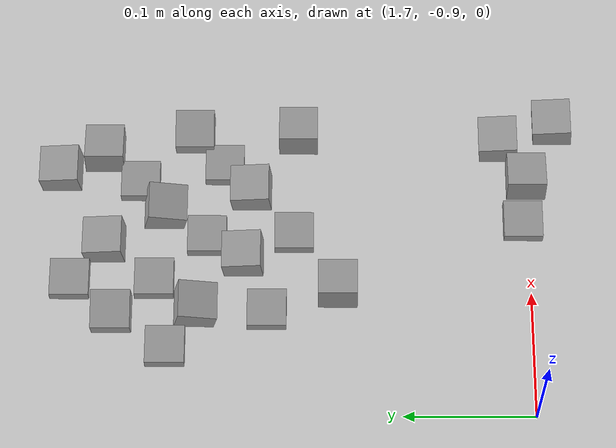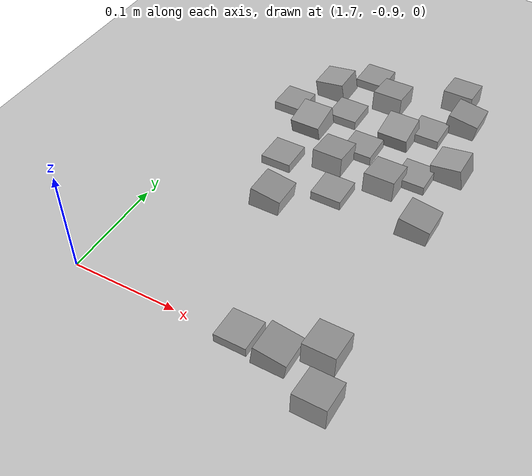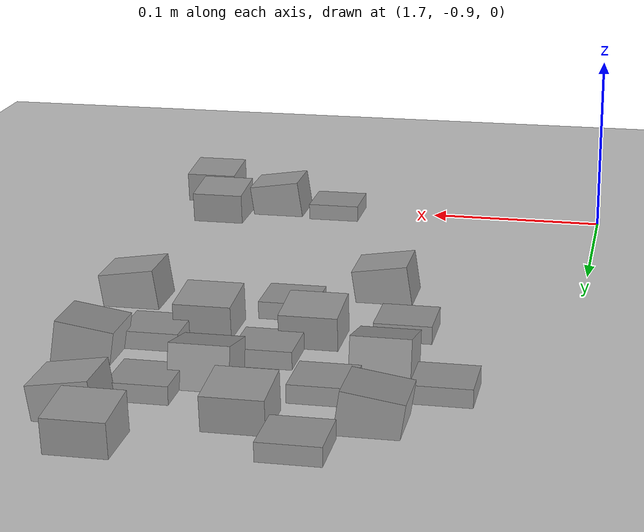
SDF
<sdf version="1.7">
 <world name="default">
  <model name="ground_plane">
   <static>1</static>
   <link name="link">
    <collision name="collision">
     <geometry><plane><normal>0 0 1</normal><size>100 100</size></plane></geometry>
     <surface><friction><ode><mu>100</mu><mu2>50</mu2></ode></friction></surface>
    </collision>
    <visual name="visual">
     <cast_shadows>0</cast_shadows>
     <geometry><plane><normal>0 0 1</normal><size>100 100</size></plane></geometry>
     <material>
      <script><uri>file://media/materials/scripts/gazebo.material</uri><name>Gazebo/Grey</name></script>
     </material>
    </visual>
   </link>
  </model>
  <model name="stone_road_2">
   <link name="link_0_clone_0">
    <inertial>
     <mass>1</mass>
     <inertia>
      <ixx>0.166667</ixx>
      <ixy>0</ixy>
      <ixz>0</ixz>
      <iyy>0.166667</iyy>
      <iyz>0</iyz>
      <izz>0.166667</izz>
     </inertia>
    </inertial>
    <pose>-0.104982 -0.15412 0.003778 0.2 -0 0</pose>
    <kinematic>1</kinematic>
    <visual name="visual">
     <geometry><box><size>0.03 0.03 0.03</size></box></geometry>
     <material>
      <lighting>1</lighting>
      <script><uri>file://media/materials/scripts/gazebo.material</uri><name>Gazebo/Grey</name></script>
      <shader type="pixel"><normal_map>__default__</normal_map></shader>
      <ambient>0.3 0.3 0.3 1</ambient>
      <diffuse>0.7 0.7 0.7 1</diffuse>
      <specular>0.01 0.01 0.01 1</specular>
      <emissive>0 0 0 1</emissive>
     </material>
    </visual>
    <collision name="collision">
     <geometry><box><size>0.03 0.03 0.03</size></box></geometry>
     <surface>
      <friction>
       <ode><mu>1</mu><mu2>1</mu2><fdir1>0 0 0</fdir1><slip1>0</slip1><slip2>0</slip2></ode>
       <torsional>
        <coefficient>1</coefficient>
        <patch_radius>0</patch_radius>
        <surface_radius>0</surface_radius>
        <use_patch_radius>1</use_patch_radius>
        <ode><slip>0</slip></ode>
       </torsional>
      </friction>
      <bounce><restitution_coefficient>0</restitution_coefficient><threshold>1e+06</threshold></bounce>
      <contact>
       <collide_without_contact>0</collide_without_contact>
       <collide_without_contact_bitmask>1</collide_without_contact_bitmask>
       <collide_bitmask>1</collide_bitmask>
       <ode>
        <soft_cfm>0</soft_cfm>
        <soft_erp>0.2</soft_erp>
        <kp>1e+13</kp>
        <kd>1</kd>
        <max_vel>0.01</max_vel>
        <min_depth>0</min_depth>
       </ode>
       <bullet>
        <split_impulse>1</split_impulse>
        <split_impulse_penetration_threshold>-0.01</split_impulse_penetration_threshold>
        <soft_cfm>0</soft_cfm>
        <soft_erp>0.2</soft_erp>
        <kp>1e+13</kp>
        <kd>1</kd>
       </bullet>
      </contact>
     </surface>
    </collision>
   </link>
   <link name="link_0_clone_1">
    <inertial>
     <mass>1</mass>
     <inertia>
      <ixx>0.166667</ixx>
      <ixy>0</ixy>
      <ixz>0</ixz>
      <iyy>0.166667</iyy>
      <iyz>0</iyz>
      <izz>0.166667</izz>
     </inertia>
    </inertial>
    <pose>-0.022921 -0.129606 0.003778 0.2 -0 0</pose>
    <kinematic>1</kinematic>
    <visual name="visual">
     <geometry><box><size>0.03 0.03 0.03</size></box></geometry>
     <material>
      <lighting>1</lighting>
      <script><uri>file://media/materials/scripts/gazebo.material</uri><name>Gazebo/Grey</name></script>
      <shader type="pixel"><normal_map>__default__</normal_map></shader>
      <ambient>0.3 0.3 0.3 1</ambient>
      <diffuse>0.7 0.7 0.7 1</diffuse>
      <specular>0.01 0.01 0.01 1</specular>
      <emissive>0 0 0 1</emissive>
     </material>
    </visual>
    <collision name="collision">
     <geometry><box><size>0.03 0.03 0.03</size></box></geometry>
     <surface>
      <friction>
       <ode><mu>1</mu><mu2>1</mu2><fdir1>0 0 0</fdir1><slip1>0</slip1><slip2>0</slip2></ode>
       <torsional>
        <coefficient>1</coefficient>
        <patch_radius>0</patch_radius>
        <surface_radius>0</surface_radius>
        <use_patch_radius>1</use_patch_radius>
        <ode><slip>0</slip></ode>
       </torsional>
      </friction>
      <bounce><restitution_coefficient>0</restitution_coefficient><threshold>1e+06</threshold></bounce>
      <contact>
       <collide_without_contact>0</collide_without_contact>
       <collide_without_contact_bitmask>1</collide_without_contact_bitmask>
       <collide_bitmask>1</collide_bitmask>
       <ode>
        <soft_cfm>0</soft_cfm>
        <soft_erp>0.2</soft_erp>
        <kp>1e+13</kp>
        <kd>1</kd>
        <max_vel>0.01</max_vel>
        <min_depth>0</min_depth>
       </ode>
       <bullet>
        <split_impulse>1</split_impulse>
        <split_impulse_penetration_threshold>-0.01</split_impulse_penetration_threshold>
        <soft_cfm>0</soft_cfm>
        <soft_erp>0.2</soft_erp>
        <kp>1e+13</kp>
        <kd>1</kd>
       </bullet>
      </contact>
     </surface>
    </collision>
   </link>
   <link name="link_0_clone_2_clone_0">
    <inertial>
     <mass>1</mass>
     <inertia>
      <ixx>0.166667</ixx>
      <ixy>0</ixy>
      <ixz>0</ixz>
      <iyy>0.166667</iyy>
      <iyz>0</iyz>
      <izz>0.166667</izz>
     </inertia>
    </inertial>
    <pose>0.026852 -0.0813 0.003778 0 0.15 0</pose>
    <kinematic>1</kinematic>
    <visual name="visual">
     <geometry><box><size>0.03 0.03 0.03</size></box></geometry>
     <material>
      <lighting>1</lighting>
      <script><uri>file://media/materials/scripts/gazebo.material</uri><name>Gazebo/Grey</name></script>
      <shader type="pixel"><normal_map>__default__</normal_map></shader>
      <ambient>0.3 0.3 0.3 1</ambient>
      <diffuse>0.7 0.7 0.7 1</diffuse>
      <specular>0.01 0.01 0.01 1</specular>
      <emissive>0 0 0 1</emissive>
     </material>
    </visual>
    <collision name="collision">
     <geometry><box><size>0.03 0.03 0.03</size></box></geometry>
     <surface>
      <friction>
       <ode><mu>1</mu><mu2>1</mu2><fdir1>0 0 0</fdir1><slip1>0</slip1><slip2>0</slip2></ode>
       <torsional>
        <coefficient>1</coefficient>
        <patch_radius>0</patch_radius>
        <surface_radius>0</surface_radius>
        <use_patch_radius>1</use_patch_radius>
        <ode><slip>0</slip></ode>
       </torsional>
      </friction>
      <bounce><restitution_coefficient>0</restitution_coefficient><threshold>1e+06</threshold></bounce>
      <contact>
       <collide_without_contact>0</collide_without_contact>
       <collide_without_contact_bitmask>1</collide_without_contact_bitmask>
       <collide_bitmask>1</collide_bitmask>
       <ode>
        <soft_cfm>0</soft_cfm>
        <soft_erp>0.2</soft_erp>
        <kp>1e+13</kp>
        <kd>1</kd>
        <max_vel>0.01</max_vel>
        <min_depth>0</min_depth>
       </ode>
       <bullet>
        <split_impulse>1</split_impulse>
        <split_impulse_penetration_threshold>-0.01</split_impulse_penetration_threshold>
        <soft_cfm>0</soft_cfm>
        <soft_erp>0.2</soft_erp>
        <kp>1e+13</kp>
        <kd>1</kd>
       </bullet>
      </contact>
     </surface>
    </collision>
   </link>
   <link name="link_0_clone_2_clone_2_clone_13_clone_clone_10">
    <inertial>
     <mass>1</mass>
     <inertia>
      <ixx>0.166667</ixx>
      <ixy>0</ixy>
      <ixz>0</ixz>
      <iyy>0.166667</iyy>
      <iyz>0</iyz>
      <izz>0.166667</izz>
     </inertia>
    </inertial>
    <pose>-0.006825 -0.196489 0.003778 -0.1 0 0</pose>
    <kinematic>1</kinematic>
    <visual name="visual">
     <geometry><box><size>0.03 0.03 0.03</size></box></geometry>
     <material>
      <lighting>1</lighting>
      <script><uri>file://media/materials/scripts/gazebo.material</uri><name>Gazebo/Grey</name></script>
      <shader type="pixel"><normal_map>__default__</normal_map></shader>
      <ambient>0.3 0.3 0.3 1</ambient>
      <diffuse>0.7 0.7 0.7 1</diffuse>
      <specular>0.01 0.01 0.01 1</specular>
      <emissive>0 0 0 1</emissive>
     </material>
    </visual>
    <collision name="collision">
     <geometry><box><size>0.03 0.03 0.03</size></box></geometry>
     <surface>
      <friction>
       <ode><mu>1</mu><mu2>1</mu2><fdir1>0 0 0</fdir1><slip1>0</slip1><slip2>0</slip2></ode>
       <torsional>
        <coefficient>1</coefficient>
        <patch_radius>0</patch_radius>
        <surface_radius>0</surface_radius>
        <use_patch_radius>1</use_patch_radius>
        <ode><slip>0</slip></ode>
       </torsional>
      </friction>
      <bounce><restitution_coefficient>0</restitution_coefficient><threshold>1e+06</threshold></bounce>
      <contact>
       <collide_without_contact>0</collide_without_contact>
       <collide_without_contact_bitmask>1</collide_without_contact_bitmask>
       <collide_bitmask>1</collide_bitmask>
       <ode>
        <soft_cfm>0</soft_cfm>
        <soft_erp>0.2</soft_erp>
        <kp>1e+13</kp>
        <kd>1</kd>
        <max_vel>0.01</max_vel>
        <min_depth>0</min_depth>
       </ode>
       <bullet>
        <split_impulse>1</split_impulse>
        <split_impulse_penetration_threshold>-0.01</split_impulse_penetration_threshold>
        <soft_cfm>0</soft_cfm>
        <soft_erp>0.2</soft_erp>
        <kp>1e+13</kp>
        <kd>1</kd>
       </bullet>
      </contact>
     </surface>
    </collision>
   </link>
   <link name="link_0_clone_2_clone_2_clone_13_clone_clone_16_clone_10">
    <inertial>
     <mass>1</mass>
     <inertia>
      <ixx>0.166667</ixx>
      <ixy>0</ixy>
      <ixz>0</ixz>
      <iyy>0.166667</iyy>
      <iyz>0</iyz>
      <izz>0.166667</izz>
     </inertia>
    </inertial>
    <pose>-0.082186 -0.05781 -0.006222 0 -0 0</pose>
    <kinematic>1</kinematic>
    <visual name="visual">
     <geometry><box><size>0.03 0.03 0.03</size></box></geometry>
     <material>
      <lighting>1</lighting>
      <script><uri>file://media/materials/scripts/gazebo.material</uri><name>Gazebo/Grey</name></script>
      <shader type="pixel"><normal_map>__default__</normal_map></shader>
      <ambient>0.3 0.3 0.3 1</ambient>
      <diffuse>0.7 0.7 0.7 1</diffuse>
      <specular>0.01 0.01 0.01 1</specular>
      <emissive>0 0 0 1</emissive>
     </material>
    </visual>
    <collision name="collision">
     <geometry><box><size>0.03 0.03 0.03</size></box></geometry>
     <surface>
      <friction>
       <ode><mu>1</mu><mu2>1</mu2><fdir1>0 0 0</fdir1><slip1>0</slip1><slip2>0</slip2></ode>
       <torsional>
        <coefficient>1</coefficient>
        <patch_radius>0</patch_radius>
        <surface_radius>0</surface_radius>
        <use_patch_radius>1</use_patch_radius>
        <ode><slip>0</slip></ode>
       </torsional>
      </friction>
      <bounce><restitution_coefficient>0</restitution_coefficient><threshold>1e+06</threshold></bounce>
      <contact>
       <collide_without_contact>0</collide_without_contact>
       <collide_without_contact_bitmask>1</collide_without_contact_bitmask>
       <collide_bitmask>1</collide_bitmask>
       <ode>
        <soft_cfm>0</soft_cfm>
        <soft_erp>0.2</soft_erp>
        <kp>1e+13</kp>
        <kd>1</kd>
        <max_vel>0.01</max_vel>
        <min_depth>0</min_depth>
       </ode>
       <bullet>
        <split_impulse>1</split_impulse>
        <split_impulse_penetration_threshold>-0.01</split_impulse_penetration_threshold>
        <soft_cfm>0</soft_cfm>
        <soft_erp>0.2</soft_erp>
        <kp>1e+13</kp>
        <kd>1</kd>
       </bullet>
      </contact>
     </surface>
    </collision>
   </link>
   <link name="link_0_clone_2_clone_2_clone_13_clone_clone_16_clone_17">
    <inertial>
     <mass>1</mass>
     <inertia>
      <ixx>0.166667</ixx>
      <ixy>0</ixy>
      <ixz>0</ixz>
      <iyy>0.166667</iyy>
      <iyz>0</iyz>
      <izz>0.166667</izz>
     </inertia>
    </inertial>
    <pose>0.014877 -0.175392 -0.006222 0 -0 0</pose>
    <kinematic>1</kinematic>
    <visual name="visual">
     <geometry><box><size>0.03 0.03 0.03</size></box></geometry>
     <material>
      <lighting>1</lighting>
      <script><uri>file://media/materials/scripts/gazebo.material</uri><name>Gazebo/Grey</name></script>
      <shader type="pixel"><normal_map>__default__</normal_map></shader>
      <ambient>0.3 0.3 0.3 1</ambient>
      <diffuse>0.7 0.7 0.7 1</diffuse>
      <specular>0.01 0.01 0.01 1</specular>
      <emissive>0 0 0 1</emissive>
     </material>
    </visual>
    <collision name="collision">
     <geometry><box><size>0.03 0.03 0.03</size></box></geometry>
     <surface>
      <friction>
       <ode><mu>1</mu><mu2>1</mu2><fdir1>0 0 0</fdir1><slip1>0</slip1><slip2>0</slip2></ode>
       <torsional>
        <coefficient>1</coefficient>
        <patch_radius>0</patch_radius>
        <surface_radius>0</surface_radius>
        <use_patch_radius>1</use_patch_radius>
        <ode><slip>0</slip></ode>
       </torsional>
      </friction>
      <bounce><restitution_coefficient>0</restitution_coefficient><threshold>1e+06</threshold></bounce>
      <contact>
       <collide_without_contact>0</collide_without_contact>
       <collide_without_contact_bitmask>1</collide_without_contact_bitmask>
       <collide_bitmask>1</collide_bitmask>
       <ode>
        <soft_cfm>0</soft_cfm>
        <soft_erp>0.2</soft_erp>
        <kp>1e+13</kp>
        <kd>1</kd>
        <max_vel>0.01</max_vel>
        <min_depth>0</min_depth>
       </ode>
       <bullet>
        <split_impulse>1</split_impulse>
        <split_impulse_penetration_threshold>-0.01</split_impulse_penetration_threshold>
        <soft_cfm>0</soft_cfm>
        <soft_erp>0.2</soft_erp>
        <kp>1e+13</kp>
        <kd>1</kd>
       </bullet>
      </contact>
     </surface>
    </collision>
   </link>
   <link name="link_0_clone_2_clone_2_clone_13_clone_clone_16_clone_27">
    <inertial>
     <mass>1</mass>
     <inertia>
      <ixx>0.166667</ixx>
      <ixy>0</ixy>
      <ixz>0</ixz>
      <iyy>0.166667</iyy>
      <iyz>0</iyz>
      <izz>0.166667</izz>
     </inertia>
    </inertial>
    <pose>-0.137316 -0.132225 -0.006222 0 -0 0</pose>
    <kinematic>1</kinematic>
    <visual name="visual">
     <geometry><box><size>0.03 0.03 0.03</size></box></geometry>
     <material>
      <lighting>1</lighting>
      <script><uri>file://media/materials/scripts/gazebo.material</uri><name>Gazebo/Grey</name></script>
      <shader type="pixel"><normal_map>__default__</normal_map></shader>
      <ambient>0.3 0.3 0.3 1</ambient>
      <diffuse>0.7 0.7 0.7 1</diffuse>
      <specular>0.01 0.01 0.01 1</specular>
      <emissive>0 0 0 1</emissive>
     </material>
    </visual>
    <collision name="collision">
     <geometry><box><size>0.03 0.03 0.03</size></box></geometry>
     <surface>
      <friction>
       <ode><mu>1</mu><mu2>1</mu2><fdir1>0 0 0</fdir1><slip1>0</slip1><slip2>0</slip2></ode>
       <torsional>
        <coefficient>1</coefficient>
        <patch_radius>0</patch_radius>
        <surface_radius>0</surface_radius>
        <use_patch_radius>1</use_patch_radius>
        <ode><slip>0</slip></ode>
       </torsional>
      </friction>
      <bounce><restitution_coefficient>0</restitution_coefficient><threshold>1e+06</threshold></bounce>
      <contact>
       <collide_without_contact>0</collide_without_contact>
       <collide_without_contact_bitmask>1</collide_without_contact_bitmask>
       <collide_bitmask>1</collide_bitmask>
       <ode>
        <soft_cfm>0</soft_cfm>
        <soft_erp>0.2</soft_erp>
        <kp>1e+13</kp>
        <kd>1</kd>
        <max_vel>0.01</max_vel>
        <min_depth>0</min_depth>
       </ode>
       <bullet>
        <split_impulse>1</split_impulse>
        <split_impulse_penetration_threshold>-0.01</split_impulse_penetration_threshold>
        <soft_cfm>0</soft_cfm>
        <soft_erp>0.2</soft_erp>
        <kp>1e+13</kp>
        <kd>1</kd>
       </bullet>
      </contact>
     </surface>
    </collision>
   </link>
   <link name="link_0_clone_2_clone_2_clone_13_clone_clone_16_clone_28">
    <inertial>
     <mass>1</mass>
     <inertia>
      <ixx>0.166667</ixx>
      <ixy>0</ixy>
      <ixz>0</ixz>
      <iyy>0.166667</iyy>
      <iyz>0</iyz>
      <izz>0.166667</izz>
     </inertia>
    </inertial>
    <pose>-0.10708 -0.209042 -0.006222 0 -0 0</pose>
    <kinematic>1</kinematic>
    <visual name="visual">
     <geometry><box><size>0.03 0.03 0.03</size></box></geometry>
     <material>
      <lighting>1</lighting>
      <script><uri>file://media/materials/scripts/gazebo.material</uri><name>Gazebo/Grey</name></script>
      <shader type="pixel"><normal_map>__default__</normal_map></shader>
      <ambient>0.3 0.3 0.3 1</ambient>
      <diffuse>0.7 0.7 0.7 1</diffuse>
      <specular>0.01 0.01 0.01 1</specular>
      <emissive>0 0 0 1</emissive>
     </material>
    </visual>
    <collision name="collision">
     <geometry><box><size>0.03 0.03 0.03</size></box></geometry>
     <surface>
      <friction>
       <ode><mu>1</mu><mu2>1</mu2><fdir1>0 0 0</fdir1><slip1>0</slip1><slip2>0</slip2></ode>
       <torsional>
        <coefficient>1</coefficient>
        <patch_radius>0</patch_radius>
        <surface_radius>0</surface_radius>
        <use_patch_radius>1</use_patch_radius>
        <ode><slip>0</slip></ode>
       </torsional>
      </friction>
      <bounce><restitution_coefficient>0</restitution_coefficient><threshold>1e+06</threshold></bounce>
      <contact>
       <collide_without_contact>0</collide_without_contact>
       <collide_without_contact_bitmask>1</collide_without_contact_bitmask>
       <collide_bitmask>1</collide_bitmask>
       <ode>
        <soft_cfm>0</soft_cfm>
        <soft_erp>0.2</soft_erp>
        <kp>1e+13</kp>
        <kd>1</kd>
        <max_vel>0.01</max_vel>
        <min_depth>0</min_depth>
       </ode>
       <bullet>
        <split_impulse>1</split_impulse>
        <split_impulse_penetration_threshold>-0.01</split_impulse_penetration_threshold>
        <soft_cfm>0</soft_cfm>
        <soft_erp>0.2</soft_erp>
        <kp>1e+13</kp>
        <kd>1</kd>
       </bullet>
      </contact>
     </surface>
    </collision>
   </link>
   <link name="link_0_clone_2_clone_2_clone_13_clone_clone_16_clone_29">
    <inertial>
     <mass>1</mass>
     <inertia>
      <ixx>0.166667</ixx>
      <ixy>0</ixy>
      <ixz>0</ixz>
      <iyy>0.166667</iyy>
      <iyz>0</iyz>
      <izz>0.166667</izz>
     </inertia>
    </inertial>
    <pose>-0.042964 -0.229632 -0.006222 0 -0 0</pose>
    <kinematic>1</kinematic>
    <visual name="visual">
     <geometry><box><size>0.03 0.03 0.03</size></box></geometry>
     <material>
      <lighting>1</lighting>
      <script><uri>file://media/materials/scripts/gazebo.material</uri><name>Gazebo/Grey</name></script>
      <shader type="pixel"><normal_map>__default__</normal_map></shader>
      <ambient>0.3 0.3 0.3 1</ambient>
      <diffuse>0.7 0.7 0.7 1</diffuse>
      <specular>0.01 0.01 0.01 1</specular>
      <emissive>0 0 0 1</emissive>
     </material>
    </visual>
    <collision name="collision">
     <geometry><box><size>0.03 0.03 0.03</size></box></geometry>
     <surface>
      <friction>
       <ode><mu>1</mu><mu2>1</mu2><fdir1>0 0 0</fdir1><slip1>0</slip1><slip2>0</slip2></ode>
       <torsional>
        <coefficient>1</coefficient>
        <patch_radius>0</patch_radius>
        <surface_radius>0</surface_radius>
        <use_patch_radius>1</use_patch_radius>
        <ode><slip>0</slip></ode>
       </torsional>
      </friction>
      <bounce><restitution_coefficient>0</restitution_coefficient><threshold>1e+06</threshold></bounce>
      <contact>
       <collide_without_contact>0</collide_without_contact>
       <collide_without_contact_bitmask>1</collide_without_contact_bitmask>
       <collide_bitmask>1</collide_bitmask>
       <ode>
        <soft_cfm>0</soft_cfm>
        <soft_erp>0.2</soft_erp>
        <kp>1e+13</kp>
        <kd>1</kd>
        <max_vel>0.01</max_vel>
        <min_depth>0</min_depth>
       </ode>
       <bullet>
        <split_impulse>1</split_impulse>
        <split_impulse_penetration_threshold>-0.01</split_impulse_penetration_threshold>
        <soft_cfm>0</soft_cfm>
        <soft_erp>0.2</soft_erp>
        <kp>1e+13</kp>
        <kd>1</kd>
       </bullet>
      </contact>
     </surface>
    </collision>
   </link>
   <link name="link_0_clone_2_clone_2_clone_13_clone_clone_16_clone_7">
    <inertial>
     <mass>1</mass>
     <inertia>
      <ixx>0.166667</ixx>
      <ixy>0</ixy>
      <ixz>0</ixz>
      <iyy>0.166667</iyy>
      <iyz>0</iyz>
      <izz>0.166667</izz>
     </inertia>
    </inertial>
    <pose>0.000883 -0.109959 -0.006222 0 -0 0</pose>
    <kinematic>1</kinematic>
    <visual name="visual">
     <geometry><box><size>0.03 0.03 0.03</size></box></geometry>
     <material>
      <lighting>1</lighting>
      <script><uri>file://media/materials/scripts/gazebo.material</uri><name>Gazebo/Grey</name></script>
      <shader type="pixel"><normal_map>__default__</normal_map></shader>
      <ambient>0.3 0.3 0.3 1</ambient>
      <diffuse>0.7 0.7 0.7 1</diffuse>
      <specular>0.01 0.01 0.01 1</specular>
      <emissive>0 0 0 1</emissive>
     </material>
    </visual>
    <collision name="collision">
     <geometry><box><size>0.03 0.03 0.03</size></box></geometry>
     <surface>
      <friction>
       <ode><mu>1</mu><mu2>1</mu2><fdir1>0 0 0</fdir1><slip1>0</slip1><slip2>0</slip2></ode>
       <torsional>
        <coefficient>1</coefficient>
        <patch_radius>0</patch_radius>
        <surface_radius>0</surface_radius>
        <use_patch_radius>1</use_patch_radius>
        <ode><slip>0</slip></ode>
       </torsional>
      </friction>
      <bounce><restitution_coefficient>0</restitution_coefficient><threshold>1e+06</threshold></bounce>
      <contact>
       <collide_without_contact>0</collide_without_contact>
       <collide_without_contact_bitmask>1</collide_without_contact_bitmask>
       <collide_bitmask>1</collide_bitmask>
       <ode>
        <soft_cfm>0</soft_cfm>
        <soft_erp>0.2</soft_erp>
        <kp>1e+13</kp>
        <kd>1</kd>
        <max_vel>0.01</max_vel>
        <min_depth>0</min_depth>
       </ode>
       <bullet>
        <split_impulse>1</split_impulse>
        <split_impulse_penetration_threshold>-0.01</split_impulse_penetration_threshold>
        <soft_cfm>0</soft_cfm>
        <soft_erp>0.2</soft_erp>
        <kp>1e+13</kp>
        <kd>1</kd>
       </bullet>
      </contact>
     </surface>
    </collision>
   </link>
   <link name="link_0_clone_2_clone_2_clone_13_clone_clone_16_clone_8">
    <inertial>
     <mass>1</mass>
     <inertia>
      <ixx>0.166667</ixx>
      <ixy>0</ixy>
      <ixz>0</ixz>
      <iyy>0.166667</iyy>
      <iyz>0</iyz>
      <izz>0.166667</izz>
     </inertia>
    </inertial>
    <pose>-0.045715 -0.162471 -0.006222 0 -0 0</pose>
    <kinematic>1</kinematic>
    <visual name="visual">
     <geometry><box><size>0.03 0.03 0.03</size></box></geometry>
     <material>
      <lighting>1</lighting>
      <script><uri>file://media/materials/scripts/gazebo.material</uri><name>Gazebo/Grey</name></script>
      <shader type="pixel"><normal_map>__default__</normal_map></shader>
      <ambient>0.3 0.3 0.3 1</ambient>
      <diffuse>0.7 0.7 0.7 1</diffuse>
      <specular>0.01 0.01 0.01 1</specular>
      <emissive>0 0 0 1</emissive>
     </material>
    </visual>
    <collision name="collision">
     <geometry><box><size>0.03 0.03 0.03</size></box></geometry>
     <surface>
      <friction>
       <ode><mu>1</mu><mu2>1</mu2><fdir1>0 0 0</fdir1><slip1>0</slip1><slip2>0</slip2></ode>
       <torsional>
        <coefficient>1</coefficient>
        <patch_radius>0</patch_radius>
        <surface_radius>0</surface_radius>
        <use_patch_radius>1</use_patch_radius>
        <ode><slip>0</slip></ode>
       </torsional>
      </friction>
      <bounce><restitution_coefficient>0</restitution_coefficient><threshold>1e+06</threshold></bounce>
      <contact>
       <collide_without_contact>0</collide_without_contact>
       <collide_without_contact_bitmask>1</collide_without_contact_bitmask>
       <collide_bitmask>1</collide_bitmask>
       <ode>
        <soft_cfm>0</soft_cfm>
        <soft_erp>0.2</soft_erp>
        <kp>1e+13</kp>
        <kd>1</kd>
        <max_vel>0.01</max_vel>
        <min_depth>0</min_depth>
       </ode>
       <bullet>
        <split_impulse>1</split_impulse>
        <split_impulse_penetration_threshold>-0.01</split_impulse_penetration_threshold>
        <soft_cfm>0</soft_cfm>
        <soft_erp>0.2</soft_erp>
        <kp>1e+13</kp>
        <kd>1</kd>
       </bullet>
      </contact>
     </surface>
    </collision>
   </link>
   <link name="link_0_clone_2_clone_2_clone_13_clone_clone_16_clone_9">
    <inertial>
     <mass>1</mass>
     <inertia>
      <ixx>0.166667</ixx>
      <ixy>0</ixy>
      <ixz>0</ixz>
      <iyy>0.166667</iyy>
      <iyz>0</iyz>
      <izz>0.166667</izz>
     </inertia>
    </inertial>
    <pose>-0.081689 -0.122641 -0.006222 0 -0 0</pose>
    <kinematic>1</kinematic>
    <visual name="visual">
     <geometry><box><size>0.03 0.03 0.03</size></box></geometry>
     <material>
      <lighting>1</lighting>
      <script><uri>file://media/materials/scripts/gazebo.material</uri><name>Gazebo/Grey</name></script>
      <shader type="pixel"><normal_map>__default__</normal_map></shader>
      <ambient>0.3 0.3 0.3 1</ambient>
      <diffuse>0.7 0.7 0.7 1</diffuse>
      <specular>0.01 0.01 0.01 1</specular>
      <emissive>0 0 0 1</emissive>
     </material>
    </visual>
    <collision name="collision">
     <geometry><box><size>0.03 0.03 0.03</size></box></geometry>
     <surface>
      <friction>
       <ode><mu>1</mu><mu2>1</mu2><fdir1>0 0 0</fdir1><slip1>0</slip1><slip2>0</slip2></ode>
       <torsional>
        <coefficient>1</coefficient>
        <patch_radius>0</patch_radius>
        <surface_radius>0</surface_radius>
        <use_patch_radius>1</use_patch_radius>
        <ode><slip>0</slip></ode>
       </torsional>
      </friction>
      <bounce><restitution_coefficient>0</restitution_coefficient><threshold>1e+06</threshold></bounce>
      <contact>
       <collide_without_contact>0</collide_without_contact>
       <collide_without_contact_bitmask>1</collide_without_contact_bitmask>
       <collide_bitmask>1</collide_bitmask>
       <ode>
        <soft_cfm>0</soft_cfm>
        <soft_erp>0.2</soft_erp>
        <kp>1e+13</kp>
        <kd>1</kd>
        <max_vel>0.01</max_vel>
        <min_depth>0</min_depth>
       </ode>
       <bullet>
        <split_impulse>1</split_impulse>
        <split_impulse_penetration_threshold>-0.01</split_impulse_penetration_threshold>
        <soft_cfm>0</soft_cfm>
        <soft_erp>0.2</soft_erp>
        <kp>1e+13</kp>
        <kd>1</kd>
       </bullet>
      </contact>
     </surface>
    </collision>
   </link>
   <link name="link_0_clone_2_clone_2_clone_13_clone_clone_6">
    <inertial>
     <mass>1</mass>
     <inertia>
      <ixx>0.166667</ixx>
      <ixy>0</ixy>
      <ixz>0</ixz>
      <iyy>0.166667</iyy>
      <iyz>0</iyz>
      <izz>0.166667</izz>
     </inertia>
    </inertial>
    <pose>0.009445 -0.048118 0.003778 -0.1 0 0</pose>
    <kinematic>1</kinematic>
    <visual name="visual">
     <geometry><box><size>0.03 0.03 0.03</size></box></geometry>
     <material>
      <lighting>1</lighting>
      <script><uri>file://media/materials/scripts/gazebo.material</uri><name>Gazebo/Grey</name></script>
      <shader type="pixel"><normal_map>__default__</normal_map></shader>
      <ambient>0.3 0.3 0.3 1</ambient>
      <diffuse>0.7 0.7 0.7 1</diffuse>
      <specular>0.01 0.01 0.01 1</specular>
      <emissive>0 0 0 1</emissive>
     </material>
    </visual>
    <collision name="collision">
     <geometry><box><size>0.03 0.03 0.03</size></box></geometry>
     <surface>
      <friction>
       <ode><mu>1</mu><mu2>1</mu2><fdir1>0 0 0</fdir1><slip1>0</slip1><slip2>0</slip2></ode>
       <torsional>
        <coefficient>1</coefficient>
        <patch_radius>0</patch_radius>
        <surface_radius>0</surface_radius>
        <use_patch_radius>1</use_patch_radius>
        <ode><slip>0</slip></ode>
       </torsional>
      </friction>
      <bounce><restitution_coefficient>0</restitution_coefficient><threshold>1e+06</threshold></bounce>
      <contact>
       <collide_without_contact>0</collide_without_contact>
       <collide_without_contact_bitmask>1</collide_without_contact_bitmask>
       <collide_bitmask>1</collide_bitmask>
       <ode>
        <soft_cfm>0</soft_cfm>
        <soft_erp>0.2</soft_erp>
        <kp>1e+13</kp>
        <kd>1</kd>
        <max_vel>0.01</max_vel>
        <min_depth>0</min_depth>
       </ode>
       <bullet>
        <split_impulse>1</split_impulse>
        <split_impulse_penetration_threshold>-0.01</split_impulse_penetration_threshold>
        <soft_cfm>0</soft_cfm>
        <soft_erp>0.2</soft_erp>
        <kp>1e+13</kp>
        <kd>1</kd>
       </bullet>
      </contact>
     </surface>
    </collision>
   </link>
   <link name="link_0_clone_2_clone_2_clone_13_clone_clone_8">
    <inertial>
     <mass>1</mass>
     <inertia>
      <ixx>0.166667</ixx>
      <ixy>0</ixy>
      <ixz>0</ixz>
      <iyy>0.166667</iyy>
      <iyz>0</iyz>
      <izz>0.166667</izz>
     </inertia>
    </inertial>
    <pose>-0.051207 -0.083778 0.003778 -0.1 0 0</pose>
    <kinematic>1</kinematic>
    <visual name="visual">
     <geometry><box><size>0.03 0.03 0.03</size></box></geometry>
     <material>
      <lighting>1</lighting>
      <script><uri>file://media/materials/scripts/gazebo.material</uri><name>Gazebo/Grey</name></script>
      <shader type="pixel"><normal_map>__default__</normal_map></shader>
      <ambient>0.3 0.3 0.3 1</ambient>
      <diffuse>0.7 0.7 0.7 1</diffuse>
      <specular>0.01 0.01 0.01 1</specular>
      <emissive>0 0 0 1</emissive>
     </material>
    </visual>
    <collision name="collision">
     <geometry><box><size>0.03 0.03 0.03</size></box></geometry>
     <surface>
      <friction>
       <ode><mu>1</mu><mu2>1</mu2><fdir1>0 0 0</fdir1><slip1>0</slip1><slip2>0</slip2></ode>
       <torsional>
        <coefficient>1</coefficient>
        <patch_radius>0</patch_radius>
        <surface_radius>0</surface_radius>
        <use_patch_radius>1</use_patch_radius>
        <ode><slip>0</slip></ode>
       </torsional>
      </friction>
      <bounce><restitution_coefficient>0</restitution_coefficient><threshold>1e+06</threshold></bounce>
      <contact>
       <collide_without_contact>0</collide_without_contact>
       <collide_without_contact_bitmask>1</collide_without_contact_bitmask>
       <collide_bitmask>1</collide_bitmask>
       <ode>
        <soft_cfm>0</soft_cfm>
        <soft_erp>0.2</soft_erp>
        <kp>1e+13</kp>
        <kd>1</kd>
        <max_vel>0.01</max_vel>
        <min_depth>0</min_depth>
       </ode>
       <bullet>
        <split_impulse>1</split_impulse>
        <split_impulse_penetration_threshold>-0.01</split_impulse_penetration_threshold>
        <soft_cfm>0</soft_cfm>
        <soft_erp>0.2</soft_erp>
        <kp>1e+13</kp>
        <kd>1</kd>
       </bullet>
      </contact>
     </surface>
    </collision>
   </link>
   <link name="link_0_clone_2_clone_2_clone_13_clone_clone_9">
    <inertial>
     <mass>1</mass>
     <inertia>
      <ixx>0.166667</ixx>
      <ixy>0</ixy>
      <ixz>0</ixz>
      <iyy>0.166667</iyy>
      <iyz>0</iyz>
      <izz>0.166667</izz>
     </inertia>
    </inertial>
    <pose>-0.062692 -0.190617 0.003778 -0.1 0 0</pose>
    <kinematic>1</kinematic>
    <visual name="visual">
     <geometry><box><size>0.03 0.03 0.03</size></box></geometry>
     <material>
      <lighting>1</lighting>
      <script><uri>file://media/materials/scripts/gazebo.material</uri><name>Gazebo/Grey</name></script>
      <shader type="pixel"><normal_map>__default__</normal_map></shader>
      <ambient>0.3 0.3 0.3 1</ambient>
      <diffuse>0.7 0.7 0.7 1</diffuse>
      <specular>0.01 0.01 0.01 1</specular>
      <emissive>0 0 0 1</emissive>
     </material>
    </visual>
    <collision name="collision">
     <geometry><box><size>0.03 0.03 0.03</size></box></geometry>
     <surface>
      <friction>
       <ode><mu>1</mu><mu2>1</mu2><fdir1>0 0 0</fdir1><slip1>0</slip1><slip2>0</slip2></ode>
       <torsional>
        <coefficient>1</coefficient>
        <patch_radius>0</patch_radius>
        <surface_radius>0</surface_radius>
        <use_patch_radius>1</use_patch_radius>
        <ode><slip>0</slip></ode>
       </torsional>
      </friction>
      <bounce><restitution_coefficient>0</restitution_coefficient><threshold>1e+06</threshold></bounce>
      <contact>
       <collide_without_contact>0</collide_without_contact>
       <collide_without_contact_bitmask>1</collide_without_contact_bitmask>
       <collide_bitmask>1</collide_bitmask>
       <ode>
        <soft_cfm>0</soft_cfm>
        <soft_erp>0.2</soft_erp>
        <kp>1e+13</kp>
        <kd>1</kd>
        <max_vel>0.01</max_vel>
        <min_depth>0</min_depth>
       </ode>
       <bullet>
        <split_impulse>1</split_impulse>
        <split_impulse_penetration_threshold>-0.01</split_impulse_penetration_threshold>
        <soft_cfm>0</soft_cfm>
        <soft_erp>0.2</soft_erp>
        <kp>1e+13</kp>
        <kd>1</kd>
       </bullet>
      </contact>
     </surface>
    </collision>
   </link>
   <link name="link_0_clone_2_clone_2_clone_3">
    <inertial>
     <mass>1</mass>
     <inertia>
      <ixx>0.166667</ixx>
      <ixy>0</ixy>
      <ixz>0</ixz>
      <iyy>0.166667</iyy>
      <iyz>0</iyz>
      <izz>0.166667</izz>
     </inertia>
    </inertial>
    <pose>-0.110514 -0.090915 0.003778 0 -0.15 0</pose>
    <kinematic>1</kinematic>
    <visual name="visual">
     <geometry><box><size>0.03 0.03 0.03</size></box></geometry>
     <material>
      <lighting>1</lighting>
      <script><uri>file://media/materials/scripts/gazebo.material</uri><name>Gazebo/Grey</name></script>
      <shader type="pixel"><normal_map>__default__</normal_map></shader>
      <ambient>0.3 0.3 0.3 1</ambient>
      <diffuse>0.7 0.7 0.7 1</diffuse>
      <specular>0.01 0.01 0.01 1</specular>
      <emissive>0 0 0 1</emissive>
     </material>
    </visual>
    <collision name="collision">
     <geometry><box><size>0.03 0.03 0.03</size></box></geometry>
     <surface>
      <friction>
       <ode><mu>1</mu><mu2>1</mu2><fdir1>0 0 0</fdir1><slip1>0</slip1><slip2>0</slip2></ode>
       <torsional>
        <coefficient>1</coefficient>
        <patch_radius>0</patch_radius>
        <surface_radius>0</surface_radius>
        <use_patch_radius>1</use_patch_radius>
        <ode><slip>0</slip></ode>
       </torsional>
      </friction>
      <bounce><restitution_coefficient>0</restitution_coefficient><threshold>1e+06</threshold></bounce>
      <contact>
       <collide_without_contact>0</collide_without_contact>
       <collide_without_contact_bitmask>1</collide_without_contact_bitmask>
       <collide_bitmask>1</collide_bitmask>
       <ode>
        <soft_cfm>0</soft_cfm>
        <soft_erp>0.2</soft_erp>
        <kp>1e+13</kp>
        <kd>1</kd>
        <max_vel>0.01</max_vel>
        <min_depth>0</min_depth>
       </ode>
       <bullet>
        <split_impulse>1</split_impulse>
        <split_impulse_penetration_threshold>-0.01</split_impulse_penetration_threshold>
        <soft_cfm>0</soft_cfm>
        <soft_erp>0.2</soft_erp>
        <kp>1e+13</kp>
        <kd>1</kd>
       </bullet>
      </contact>
     </surface>
    </collision>
   </link>
   <link name="link_0_clone_2_clone_2_clone_4">
    <inertial>
     <mass>1</mass>
     <inertia>
      <ixx>0.166667</ixx>
      <ixy>0</ixy>
      <ixz>0</ixz>
      <iyy>0.166667</iyy>
      <iyz>0</iyz>
      <izz>0.166667</izz>
     </inertia>
    </inertial>
    <pose>0.042048 -0.151731 0.003778 0 -0.15 0</pose>
    <kinematic>1</kinematic>
    <visual name="visual">
     <geometry><box><size>0.03 0.03 0.03</size></box></geometry>
     <material>
      <lighting>1</lighting>
      <script><uri>file://media/materials/scripts/gazebo.material</uri><name>Gazebo/Grey</name></script>
      <shader type="pixel"><normal_map>__default__</normal_map></shader>
      <ambient>0.3 0.3 0.3 1</ambient>
      <diffuse>0.7 0.7 0.7 1</diffuse>
      <specular>0.01 0.01 0.01 1</specular>
      <emissive>0 0 0 1</emissive>
     </material>
    </visual>
    <collision name="collision">
     <geometry><box><size>0.03 0.03 0.03</size></box></geometry>
     <surface>
      <friction>
       <ode><mu>1</mu><mu2>1</mu2><fdir1>0 0 0</fdir1><slip1>0</slip1><slip2>0</slip2></ode>
       <torsional>
        <coefficient>1</coefficient>
        <patch_radius>0</patch_radius>
        <surface_radius>0</surface_radius>
        <use_patch_radius>1</use_patch_radius>
        <ode><slip>0</slip></ode>
       </torsional>
      </friction>
      <bounce><restitution_coefficient>0</restitution_coefficient><threshold>1e+06</threshold></bounce>
      <contact>
       <collide_without_contact>0</collide_without_contact>
       <collide_without_contact_bitmask>1</collide_without_contact_bitmask>
       <collide_bitmask>1</collide_bitmask>
       <ode>
        <soft_cfm>0</soft_cfm>
        <soft_erp>0.2</soft_erp>
        <kp>1e+13</kp>
        <kd>1</kd>
        <max_vel>0.01</max_vel>
        <min_depth>0</min_depth>
       </ode>
       <bullet>
        <split_impulse>1</split_impulse>
        <split_impulse_penetration_threshold>-0.01</split_impulse_penetration_threshold>
        <soft_cfm>0</soft_cfm>
        <soft_erp>0.2</soft_erp>
        <kp>1e+13</kp>
        <kd>1</kd>
       </bullet>
      </contact>
     </surface>
    </collision>
   </link>
   <link name="link_0_clone_2_clone_6">
    <inertial>
     <mass>1</mass>
     <inertia>
      <ixx>0.166667</ixx>
      <ixy>0</ixy>
      <ixz>0</ixz>
      <iyy>0.166667</iyy>
      <iyz>0</iyz>
      <izz>0.166667</izz>
     </inertia>
    </inertial>
    <pose>-0.087859 -0.263184 0.003778 0 0.15 0</pose>
    <kinematic>1</kinematic>
    <visual name="visual">
     <geometry><box><size>0.03 0.03 0.03</size></box></geometry>
     <material>
      <lighting>1</lighting>
      <script><uri>file://media/materials/scripts/gazebo.material</uri><name>Gazebo/Grey</name></script>
      <shader type="pixel"><normal_map>__default__</normal_map></shader>
      <ambient>0.3 0.3 0.3 1</ambient>
      <diffuse>0.7 0.7 0.7 1</diffuse>
      <specular>0.01 0.01 0.01 1</specular>
      <emissive>0 0 0 1</emissive>
     </material>
    </visual>
    <collision name="collision">
     <geometry><box><size>0.03 0.03 0.03</size></box></geometry>
     <surface>
      <friction>
       <ode><mu>1</mu><mu2>1</mu2><fdir1>0 0 0</fdir1><slip1>0</slip1><slip2>0</slip2></ode>
       <torsional>
        <coefficient>1</coefficient>
        <patch_radius>0</patch_radius>
        <surface_radius>0</surface_radius>
        <use_patch_radius>1</use_patch_radius>
        <ode><slip>0</slip></ode>
       </torsional>
      </friction>
      <bounce><restitution_coefficient>0</restitution_coefficient><threshold>1e+06</threshold></bounce>
      <contact>
       <collide_without_contact>0</collide_without_contact>
       <collide_without_contact_bitmask>1</collide_without_contact_bitmask>
       <collide_bitmask>1</collide_bitmask>
       <ode>
        <soft_cfm>0</soft_cfm>
        <soft_erp>0.2</soft_erp>
        <kp>1e+13</kp>
        <kd>1</kd>
        <max_vel>0.01</max_vel>
        <min_depth>0</min_depth>
       </ode>
       <bullet>
        <split_impulse>1</split_impulse>
        <split_impulse_penetration_threshold>-0.01</split_impulse_penetration_threshold>
        <soft_cfm>0</soft_cfm>
        <soft_erp>0.2</soft_erp>
        <kp>1e+13</kp>
        <kd>1</kd>
       </bullet>
      </contact>
     </surface>
    </collision>
   </link>
   <link name="link_0_clone_2_clone_7">
    <inertial>
     <mass>1</mass>
     <inertia>
      <ixx>0.166667</ixx>
      <ixy>0</ixy>
      <ixz>0</ixz>
      <iyy>0.166667</iyy>
      <iyz>0</iyz>
      <izz>0.166667</izz>
     </inertia>
    </inertial>
    <pose>0.04255 -0.232691 0.003778 0 0.15 0</pose>
    <kinematic>1</kinematic>
    <visual name="visual">
     <geometry><box><size>0.03 0.03 0.03</size></box></geometry>
     <material>
      <lighting>1</lighting>
      <script><uri>file://media/materials/scripts/gazebo.material</uri><name>Gazebo/Grey</name></script>
      <shader type="pixel"><normal_map>__default__</normal_map></shader>
      <ambient>0.3 0.3 0.3 1</ambient>
      <diffuse>0.7 0.7 0.7 1</diffuse>
      <specular>0.01 0.01 0.01 1</specular>
      <emissive>0 0 0 1</emissive>
     </material>
    </visual>
    <collision name="collision">
     <geometry><box><size>0.03 0.03 0.03</size></box></geometry>
     <surface>
      <friction>
       <ode><mu>1</mu><mu2>1</mu2><fdir1>0 0 0</fdir1><slip1>0</slip1><slip2>0</slip2></ode>
       <torsional>
        <coefficient>1</coefficient>
        <patch_radius>0</patch_radius>
        <surface_radius>0</surface_radius>
        <use_patch_radius>1</use_patch_radius>
        <ode><slip>0</slip></ode>
       </torsional>
      </friction>
      <bounce><restitution_coefficient>0</restitution_coefficient><threshold>1e+06</threshold></bounce>
      <contact>
       <collide_without_contact>0</collide_without_contact>
       <collide_without_contact_bitmask>1</collide_without_contact_bitmask>
       <collide_bitmask>1</collide_bitmask>
       <ode>
        <soft_cfm>0</soft_cfm>
        <soft_erp>0.2</soft_erp>
        <kp>1e+13</kp>
        <kd>1</kd>
        <max_vel>0.01</max_vel>
        <min_depth>0</min_depth>
       </ode>
       <bullet>
        <split_impulse>1</split_impulse>
        <split_impulse_penetration_threshold>-0.01</split_impulse_penetration_threshold>
        <soft_cfm>0</soft_cfm>
        <soft_erp>0.2</soft_erp>
        <kp>1e+13</kp>
        <kd>1</kd>
       </bullet>
      </contact>
     </surface>
    </collision>
   </link>
   <static>0</static>
   <pose>1.89226 -0.488312 -0 0 -0 0</pose>
  </model>
  <model name="stone_road_10">
   <link name="link_0_clone_2_clone_2_clone_13_clone_clone_13">
    <inertial>
     <mass>1</mass>
     <inertia>
      <ixx>0.166667</ixx>
      <ixy>0</ixy>
      <ixz>0</ixz>
      <iyy>0.166667</iyy>
      <iyz>0</iyz>
      <izz>0.166667</izz>
     </inertia>
    </inertial>
    <pose>-0.069861 0.157394 0.003778 -0.1 0 0</pose>
    <kinematic>1</kinematic>
    <visual name="visual">
     <geometry><box><size>0.03 0.03 0.03</size></box></geometry>
     <material>
      <lighting>1</lighting>
      <script><uri>file://media/materials/scripts/gazebo.material</uri><name>Gazebo/Grey</name></script>
      <shader type="pixel"><normal_map>__default__</normal_map></shader>
      <ambient>0.3 0.3 0.3 1</ambient>
      <diffuse>0.7 0.7 0.7 1</diffuse>
      <specular>0.01 0.01 0.01 1</specular>
      <emissive>0 0 0 1</emissive>
     </material>
    </visual>
    <collision name="collision">
     <geometry><box><size>0.03 0.03 0.03</size></box></geometry>
     <surface>
      <friction>
       <ode><mu>1</mu><mu2>1</mu2><fdir1>0 0 0</fdir1><slip1>0</slip1><slip2>0</slip2></ode>
       <torsional>
        <coefficient>1</coefficient>
        <patch_radius>0</patch_radius>
        <surface_radius>0</surface_radius>
        <use_patch_radius>1</use_patch_radius>
        <ode><slip>0</slip></ode>
       </torsional>
      </friction>
      <bounce><restitution_coefficient>0</restitution_coefficient><threshold>1e+06</threshold></bounce>
      <contact>
       <collide_without_contact>0</collide_without_contact>
       <collide_without_contact_bitmask>1</collide_without_contact_bitmask>
       <collide_bitmask>1</collide_bitmask>
       <ode>
        <soft_cfm>0</soft_cfm>
        <soft_erp>0.2</soft_erp>
        <kp>1e+13</kp>
        <kd>1</kd>
        <max_vel>0.01</max_vel>
        <min_depth>0</min_depth>
       </ode>
       <bullet>
        <split_impulse>1</split_impulse>
        <split_impulse_penetration_threshold>-0.01</split_impulse_penetration_threshold>
        <soft_cfm>0</soft_cfm>
        <soft_erp>0.2</soft_erp>
        <kp>1e+13</kp>
        <kd>1</kd>
       </bullet>
      </contact>
     </surface>
    </collision>
   </link>
   <link name="link_0_clone_2_clone_2_clone_13_clone_clone_15">
    <inertial>
     <mass>1</mass>
     <inertia>
      <ixx>0.166667</ixx>
      <ixy>0</ixy>
      <ixz>0</ixz>
      <iyy>0.166667</iyy>
      <iyz>0</iyz>
      <izz>0.166667</izz>
     </inertia>
    </inertial>
    <pose>-0.084893 0.19984 0.003778 -0.1 0 0</pose>
    <kinematic>1</kinematic>
    <visual name="visual">
     <geometry><box><size>0.03 0.03 0.03</size></box></geometry>
     <material>
      <lighting>1</lighting>
      <script><uri>file://media/materials/scripts/gazebo.material</uri><name>Gazebo/Grey</name></script>
      <shader type="pixel"><normal_map>__default__</normal_map></shader>
      <ambient>0.3 0.3 0.3 1</ambient>
      <diffuse>0.7 0.7 0.7 1</diffuse>
      <specular>0.01 0.01 0.01 1</specular>
      <emissive>0 0 0 1</emissive>
     </material>
    </visual>
    <collision name="collision">
     <geometry><box><size>0.03 0.03 0.03</size></box></geometry>
     <surface>
      <friction>
       <ode><mu>1</mu><mu2>1</mu2><fdir1>0 0 0</fdir1><slip1>0</slip1><slip2>0</slip2></ode>
       <torsional>
        <coefficient>1</coefficient>
        <patch_radius>0</patch_radius>
        <surface_radius>0</surface_radius>
        <use_patch_radius>1</use_patch_radius>
        <ode><slip>0</slip></ode>
       </torsional>
      </friction>
      <bounce><restitution_coefficient>0</restitution_coefficient><threshold>1e+06</threshold></bounce>
      <contact>
       <collide_without_contact>0</collide_without_contact>
       <collide_without_contact_bitmask>1</collide_without_contact_bitmask>
       <collide_bitmask>1</collide_bitmask>
       <ode>
        <soft_cfm>0</soft_cfm>
        <soft_erp>0.2</soft_erp>
        <kp>1e+13</kp>
        <kd>1</kd>
        <max_vel>0.01</max_vel>
        <min_depth>0</min_depth>
       </ode>
       <bullet>
        <split_impulse>1</split_impulse>
        <split_impulse_penetration_threshold>-0.01</split_impulse_penetration_threshold>
        <soft_cfm>0</soft_cfm>
        <soft_erp>0.2</soft_erp>
        <kp>1e+13</kp>
        <kd>1</kd>
       </bullet>
      </contact>
     </surface>
    </collision>
   </link>
   <link name="link_0_clone_2_clone_2_clone_13_clone_clone_16_clone_25">
    <inertial>
     <mass>1</mass>
     <inertia>
      <ixx>0.166667</ixx>
      <ixy>0</ixy>
      <ixz>0</ixz>
      <iyy>0.166667</iyy>
      <iyz>0</iyz>
      <izz>0.166667</izz>
     </inertia>
    </inertial>
    <pose>-0.15326 0.182661 -0.006222 0 -0 0</pose>
    <kinematic>1</kinematic>
    <visual name="visual">
     <geometry><box><size>0.03 0.03 0.03</size></box></geometry>
     <material>
      <lighting>1</lighting>
      <script><uri>file://media/materials/scripts/gazebo.material</uri><name>Gazebo/Grey</name></script>
      <shader type="pixel"><normal_map>__default__</normal_map></shader>
      <ambient>0.3 0.3 0.3 1</ambient>
      <diffuse>0.7 0.7 0.7 1</diffuse>
      <specular>0.01 0.01 0.01 1</specular>
      <emissive>0 0 0 1</emissive>
     </material>
    </visual>
    <collision name="collision">
     <geometry><box><size>0.03 0.03 0.03</size></box></geometry>
     <surface>
      <friction>
       <ode><mu>1</mu><mu2>1</mu2><fdir1>0 0 0</fdir1><slip1>0</slip1><slip2>0</slip2></ode>
       <torsional>
        <coefficient>1</coefficient>
        <patch_radius>0</patch_radius>
        <surface_radius>0</surface_radius>
        <use_patch_radius>1</use_patch_radius>
        <ode><slip>0</slip></ode>
       </torsional>
      </friction>
      <bounce><restitution_coefficient>0</restitution_coefficient><threshold>1e+06</threshold></bounce>
      <contact>
       <collide_without_contact>0</collide_without_contact>
       <collide_without_contact_bitmask>1</collide_without_contact_bitmask>
       <collide_bitmask>1</collide_bitmask>
       <ode>
        <soft_cfm>0</soft_cfm>
        <soft_erp>0.2</soft_erp>
        <kp>1e+13</kp>
        <kd>1</kd>
        <max_vel>0.01</max_vel>
        <min_depth>0</min_depth>
       </ode>
       <bullet>
        <split_impulse>1</split_impulse>
        <split_impulse_penetration_threshold>-0.01</split_impulse_penetration_threshold>
        <soft_cfm>0</soft_cfm>
        <soft_erp>0.2</soft_erp>
        <kp>1e+13</kp>
        <kd>1</kd>
       </bullet>
      </contact>
     </surface>
    </collision>
   </link>
   <link name="link_0_clone_2_clone_4">
    <inertial>
     <mass>1</mass>
     <inertia>
      <ixx>0.166667</ixx>
      <ixy>0</ixy>
      <ixz>0</ixz>
      <iyy>0.166667</iyy>
      <iyz>0</iyz>
      <izz>0.166667</izz>
     </inertia>
    </inertial>
    <pose>-0.117313 0.179399 0.003778 0 0.15 0</pose>
    <kinematic>1</kinematic>
    <visual name="visual">
     <geometry><box><size>0.03 0.03 0.03</size></box></geometry>
     <material>
      <lighting>1</lighting>
      <script><uri>file://media/materials/scripts/gazebo.material</uri><name>Gazebo/Grey</name></script>
      <shader type="pixel"><normal_map>__default__</normal_map></shader>
      <ambient>0.3 0.3 0.3 1</ambient>
      <diffuse>0.7 0.7 0.7 1</diffuse>
      <specular>0.01 0.01 0.01 1</specular>
      <emissive>0 0 0 1</emissive>
     </material>
    </visual>
    <collision name="collision">
     <geometry><box><size>0.03 0.03 0.03</size></box></geometry>
     <surface>
      <friction>
       <ode><mu>1</mu><mu2>1</mu2><fdir1>0 0 0</fdir1><slip1>0</slip1><slip2>0</slip2></ode>
       <torsional>
        <coefficient>1</coefficient>
        <patch_radius>0</patch_radius>
        <surface_radius>0</surface_radius>
        <use_patch_radius>1</use_patch_radius>
        <ode><slip>0</slip></ode>
       </torsional>
      </friction>
      <bounce><restitution_coefficient>0</restitution_coefficient><threshold>1e+06</threshold></bounce>
      <contact>
       <collide_without_contact>0</collide_without_contact>
       <collide_without_contact_bitmask>1</collide_without_contact_bitmask>
       <collide_bitmask>1</collide_bitmask>
       <ode>
        <soft_cfm>0</soft_cfm>
        <soft_erp>0.2</soft_erp>
        <kp>1e+13</kp>
        <kd>1</kd>
        <max_vel>0.01</max_vel>
        <min_depth>0</min_depth>
       </ode>
       <bullet>
        <split_impulse>1</split_impulse>
        <split_impulse_penetration_threshold>-0.01</split_impulse_penetration_threshold>
        <soft_cfm>0</soft_cfm>
        <soft_erp>0.2</soft_erp>
        <kp>1e+13</kp>
        <kd>1</kd>
       </bullet>
      </contact>
     </surface>
    </collision>
   </link>
   <static>0</static>
   <pose>2.01299 -1.07769 -0 0 -0 0</pose>
  </model>
 </world>
</sdf>
